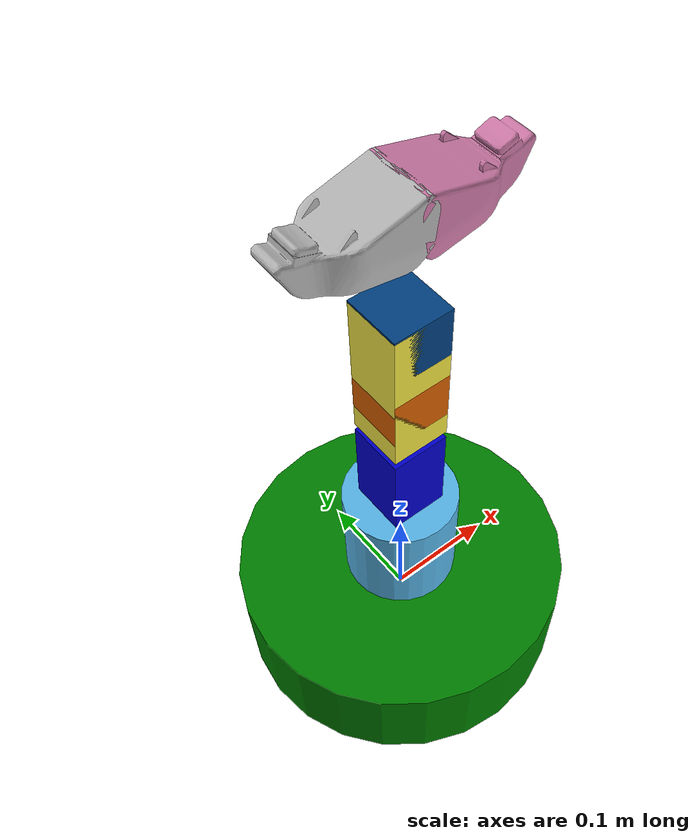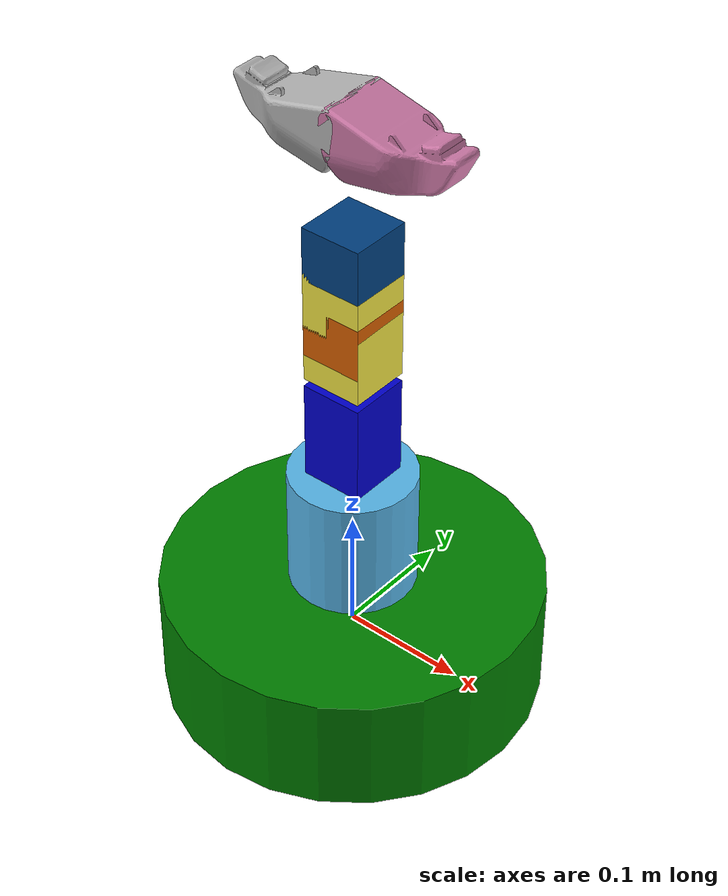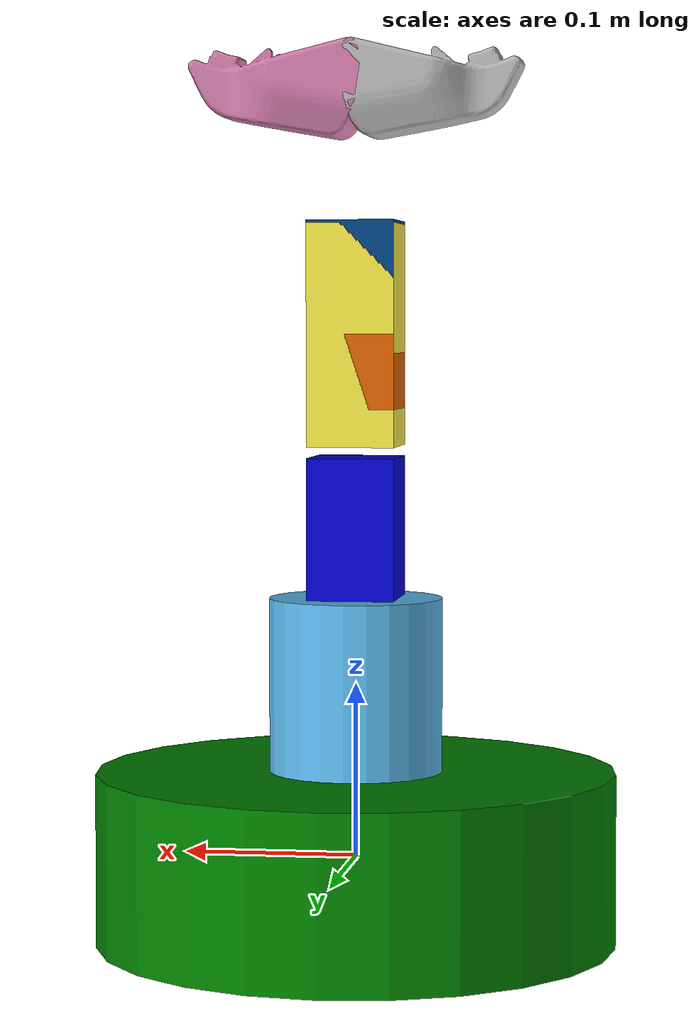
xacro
<?xml version="1.0"?>
	<robot name="lynxmotion" xmlns:xacro="http://ros.org/wiki/xacro">

	<!---
		bottom_arm is shoulder
		top_arm is ebow
	-->
	<xacro:property name="shoulder2Elbow" value="0.12065"/>
	<xacro:property name="Elbow2Wrist" value="0.127"/>
	<xacro:property name="Wrist2Tip" value="0.085725"/>
    <xacro:property name="HeightReachingUp" value="0.4005"/>
    <xacro:property name="velocity" value="0.5"/>

	<xacro:property name="Deg90" value="1.57075"/>
	<xacro:property name="PI" value="3.1415"/>
	<xacro:property name="thickness" value="0.05"/>
	<xacro:property name="baseLength" value="0.1"/>
	<xacro:property name="baseRadius" value="0.15"/>
	<xacro:property name="baseRotateLength" value="0.1"/>

	<material name="blue">
		<color rgba="0 0 0.8 1"/>
	</material>
	<material name="green">
		<color rgba="0 0.5 0 1"/>
	</material>
	<material name="light_blue">
		<color rgba="0 0.25 0.5 1"/>
	</material>

	<link name="base_link">
		<visual>
			<geometry>
				<cylinder length="${baseLength}" radius="${baseRadius}"/>
			</geometry>
			<material name="green"/>
		</visual>
	</link>

	<link name="base_rotate">
		<visual>
			<geometry>
				<cylinder length="${baseRotateLength}" radius="${baseRadius/3}"/>
			</geometry>
			<origin rpy="0 0 0" xyz="0 0 ${baseLength/2}"/>
		</visual>
	</link>

	<link name="bottom_arm">
		<visual>
			<geometry>
				<box size="${shoulder2Elbow} ${thickness} 0.05"/>
			</geometry>
			<material name="blue"/>
			<origin rpy="0 ${Deg90} 0" xyz="0 0 ${shoulder2Elbow/2}"/>
		</visual>
	</link>

	<link name="top_arm">
		<visual>
			<geometry>
				<box size="${Elbow2Wrist} ${thickness} 0.05"/>
			</geometry>
			<origin rpy="0 ${Deg90} 0" xyz="0 0 ${Elbow2Wrist/2}"/>
		</visual>
	</link>

	<link name="fore_arm">
		<visual>
			<geometry>
				<box size="${Wrist2Tip/2} ${thickness} 0.05"/>
			</geometry>
			<material name="light_blue"/>
			<origin rpy="0 ${Deg90} 0" xyz="0 0 ${Wrist2Tip/4}"/>
		</visual>
	</link>

	<link name="wrist">
		<visual>
			<geometry>
				<box size="${Wrist2Tip/2} ${thickness} 0.05"/>
			</geometry>
			<origin rpy="0 -${Deg90} 0" xyz="0 0 ${Wrist2Tip/4}"/>
		</visual>
	</link>

	<xacro:macro name = "gripper" params="prefix origin_y lower_limit upper_limit">
		<link name="${prefix}_gripper">
			<visual>
				<origin rpy="-${Deg90} 0 ${origin_y}" xyz="0 0 0"/>
				<geometry>
					<mesh filename="package://urdf_tutorial/meshes/l_finger.dae"/>
				</geometry>
			</visual>
		</link>

		<joint name="${prefix}_gripper_joint" type="revolute">
			<axis xyz="0 1 0"/>
			<limit effort="1000.0" lower="${lower_limit}" upper="${upper_limit}" velocity="${velocity}"/>
			<origin rpy="0 0 0" xyz="0 0 0.2"/>
			<parent link="wrist"/>
			<child link="${prefix}_gripper"/>
		</joint>
	</xacro:macro>

	<xacro:gripper prefix="right" origin_y="0" lower_limit="-${Deg90}" upper_limit="0"/>
    <xacro:gripper prefix="left" origin_y="${PI}"  lower_limit="0" upper_limit="${Deg90}"/>

	<joint name="base_block_to_base_link" type="revolute">
		<axis xyz="0 0 1"/>
		<limit effort="1000.0" lower="-${Deg90}" upper="${Deg90}" velocity="${velocity}"/>
		<origin xyz="0 0 ${baseLength/2}"/>
		<parent link="base_link"/>
		<child link="base_rotate"/>
	</joint>

	<joint name="base_to_bottom_arm" type="revolute">
		<axis xyz="0 1 0"/>
		<limit effort="1000.0" lower="-${Deg90}" upper="${Deg90}" velocity="${velocity}"/>
		<origin xyz="0 0 ${shoulder2Elbow/2}"/>
		<parent link="base_rotate"/>
		<child link="bottom_arm"/>
	</joint>

	<joint name="bottom_to_top_arm" type="revolute">
		<axis xyz="0 1 0"/>
		<limit effort="1000.0" lower="-${Deg90}" upper="${Deg90}" velocity="${velocity}"/>
		<origin xyz="0 0 ${Elbow2Wrist}"/>
		<parent link="bottom_arm"/>
		<child link="top_arm"/>
	</joint>

	<joint name="top_to_fore_arm" type="revolute">
		<axis xyz="0 1 0"/>
		<limit effort="1000.0" lower="-${Deg90}" upper="${Deg90}" velocity="0.5"/>
		<origin xyz="0 0 ${Wrist2Tip}"/>
		<parent link="top_arm"/>
		<child link="fore_arm"/>
	</joint>

	<joint name="wrist_rotate" type="revolute">
		<axis xyz="0 0 1"/>
		<limit effort="1000.0" lower="-${Deg90}" upper="${Deg90}" velocity="${velocity}"/>
		<origin xyz="0 0 ${Wrist2Tip/4}"/>
		<parent link="top_arm"/>
		<child link="wrist"/>
	</joint>

</robot>
